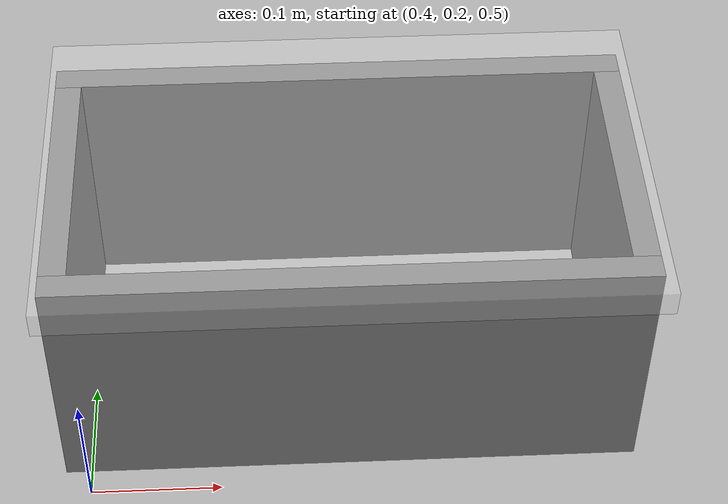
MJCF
<mujoco model="box_with_lid">
  <worldbody>
     <body name="chest" pos="0.6 0.45 0.5" quat="1 0 0 1">
         <geom pos="0 0 0.1" size="0.01 0.22 0.1" type="box" />
         <geom pos="-0.22 0 0.1" size="0.01 0.22 0.1" type="box" />
         <geom pos="-0.11 0.21 0.1" size="0.1 0.01 0.1" type="box" />
         <geom pos="-0.11 -0.21 0.1" size="0.1 0.01 0.1" type="box" />
         <body name="lid" pos="0 0 0.205">
              <geom pos="-0.13 0 0.01" rgba="1 1 1 0.1" size="0.14 0.22 0.01" type="box" />
              <joint axis="0 1 0" pos="0 0 0.01" type="hinge" />
         </body>
     </body>
  </worldbody>
</mujoco>
